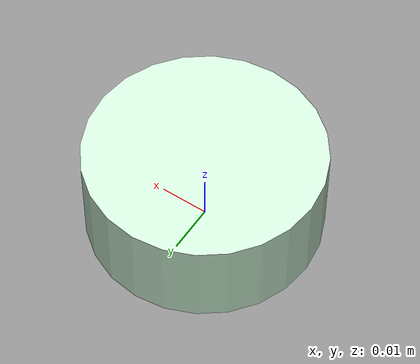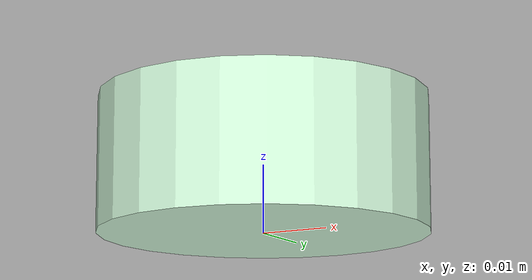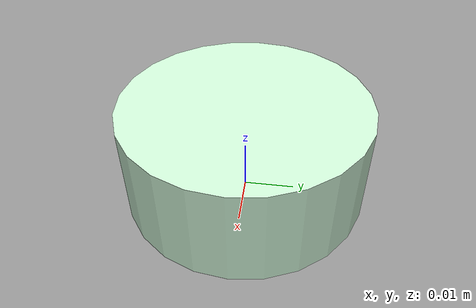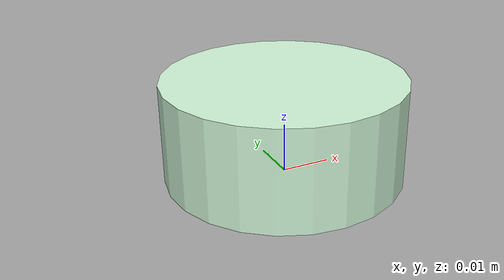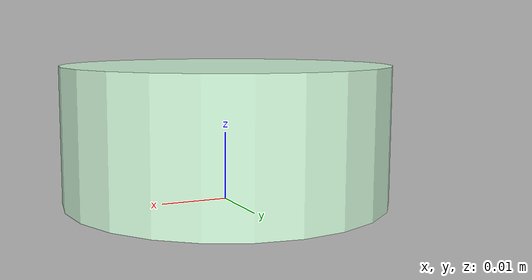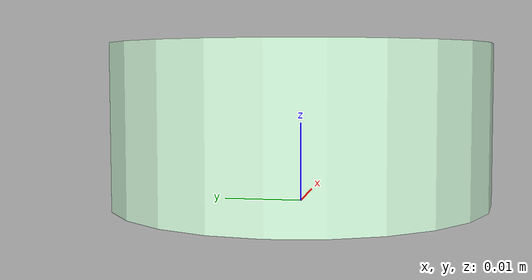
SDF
<sdf version="1.7">
  <model name="disc_24">
    <link name="base_link">
      <inertial>
        <mass>0.05</mass>
        <inertia>
          <ixx>7.91e-06</ixx>
          <ixy>0</ixy>
          <ixz>0</ixz>
          <iyy>7.91e-06</iyy>
          <iyz>0</iyz>
          <izz>1.56e-05</izz>
        </inertia>
        <pose>0 0 0.0025 0 0 0</pose>
      </inertial>
      <pose>0 0 0 0 0 0</pose>
      <visual name="visual">
        <pose>0 0 0.01 0 0 0</pose>
        <geometry>
            <cylinder>
              <radius>0.024</radius>
              <length>0.02</length>
            </cylinder>
        </geometry>
        <material>
          <diffuse>0.8129861899668317 0.9622550408353729 0.8437114529190244 1</diffuse>
        </material>
      </visual>
      <collision name="collision">
        <pose>0 0 0.01 0 0 0</pose>
        <geometry>
            <cylinder>
              <radius>0.024</radius>
              <length>0.02</length>
            </cylinder>
        </geometry>
      </collision>
      <collision name="ball1">
        <pose>0.01697056274847714 0.01697056274847714 0 0 0 0</pose>
        <geometry>
          <sphere>
            <radius>1e-07</radius>
          </sphere>
        </geometry>
      </collision>
      <collision name="ball2">
        <pose>-0.01697056274847714 0.01697056274847714 0 0 0 0</pose>
        <geometry>
          <sphere>
            <radius>1e-07</radius>
          </sphere>
        </geometry>
      </collision>
      <collision name="ball3">
        <pose>0.01697056274847714 -0.01697056274847714 0 0 0 0</pose>
        <geometry>
          <sphere>
            <radius>1e-07</radius>
          </sphere>
        </geometry>
      </collision>
      <collision name="ball4">
        <pose>-0.01697056274847714 -0.01697056274847714 0 0 0 0</pose>
        <geometry>
          <sphere>
            <radius>1e-07</radius>
          </sphere>
        </geometry>
      </collision>
    </link>
  </model>
</sdf>
